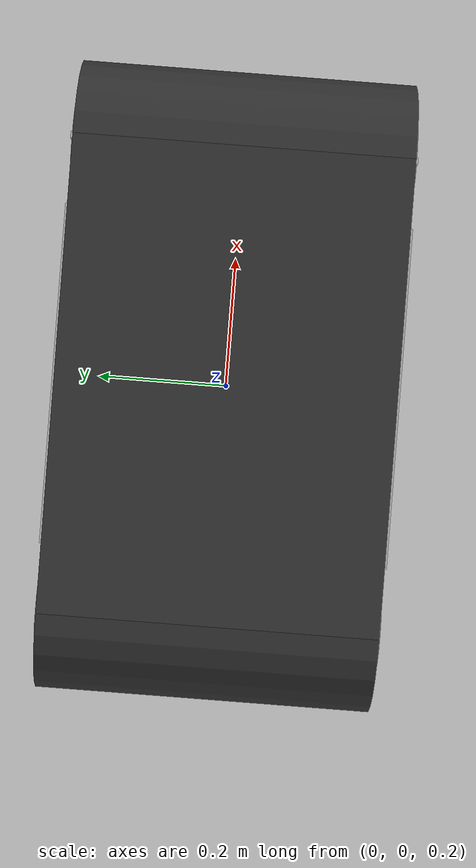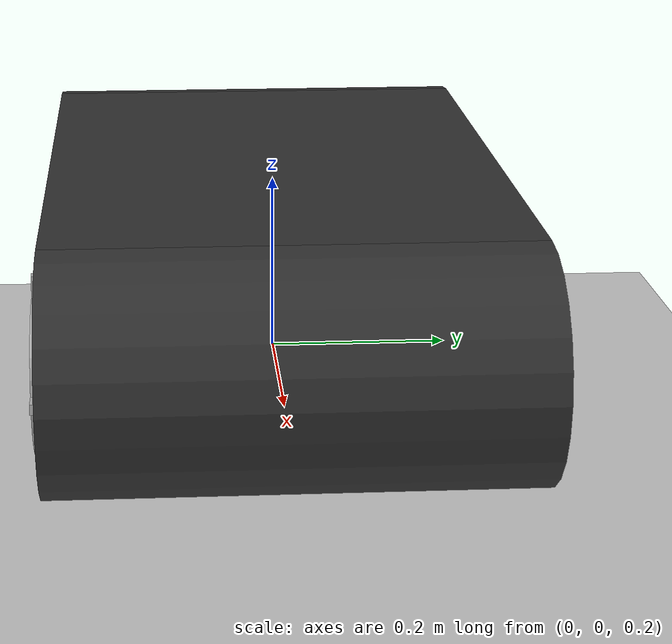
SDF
<?xml version="1.0" ?>
<sdf version="1.6">
    <world name="default">
        <include>
            <uri>model://ground_plane</uri>
        </include>

        <!-- Global light source -->
        <include>
            <uri>model://sun</uri>
        </include>

        <!-- Example track -->
        <include>
            <uri>model://example_track_simple</uri>
            <pose>0 0 0.3 0 0 0</pose>
        </include>

        <!-- Rigid anchor for the track -->

        <!-- camera angle -->
        <gui fullscreen='0'>
            <camera name='user_camera'>
                <pose>2.0 -1.5 1.0 0.0 0.3 2.45</pose>
                <view_controller>orbit</view_controller>
            </camera>
        </gui>
    </world>
</sdf>

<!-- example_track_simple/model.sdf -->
<sdf version='1.6'>
  <model name='example_track_simple'>
    <link name='body'>
      <pose frame=''>0 0 0 0 -0 0</pose>
      <inertial>
        <pose frame=''>-0.058333 0 0 0 -0 0</pose>
        <mass>1.2</mass>
        <inertia>
          <ixx>0.0296633</ixx>
          <ixy>0</ixy>
          <ixz>0</ixz>
          <iyy>0.0452233</iyy>
          <iyz>0</iyz>
          <izz>0.06758</izz>
        </inertia>
      </inertial>
      <collision name='body_collision'>
        <pose frame=''>0 0 0 0 -0 0</pose>
        <geometry>
          <box>
            <size>0.51 0.5 0.2</size>
          </box>
        </geometry>
      </collision>
      <collision name='body_fixed_joint_lump__idler_collision_1'>
        <pose frame=''>-0.35 0 0 1.5708 -0 0</pose>
        <geometry>
          <cylinder>
            <length>0.51</length>
            <radius>0.08</radius>
          </cylinder>
        </geometry>
      </collision>
      <visual name='body_visual'>
        <pose frame=''>0 0 0 0 -0 0</pose>
        <geometry>
          <box>
            <size>0.5 0.51 0.2</size>
          </box>
        </geometry>
      </visual>
      <visual name='body_fixed_joint_lump__idler_visual_1'>
        <pose frame=''>-0.35 0 0 1.5708 -0 0</pose>
        <geometry>
          <cylinder>
            <length>0.51</length>
            <radius>0.08</radius>
          </cylinder>
        </geometry>
      </visual>
    </link>
    <link name='sprocket'>
      <pose frame=''>0.35 0 0 0 -0 0</pose>
      <inertial>
        <pose frame=''>0 0 0 0 -0 0</pose>
        <mass>0.2</mass>
        <inertia>
          <ixx>0.004655</ixx>
          <ixy>0</ixy>
          <ixz>0</ixz>
          <iyy>0.00064</iyy>
          <iyz>0</iyz>
          <izz>0.004655</izz>
        </inertia>
      </inertial>
      <collision name='sprocket_collision'>
        <pose frame=''>0 0 0 1.5708 -0 0</pose>
        <geometry>
          <cylinder>
            <length>0.51</length>
            <radius>0.08</radius>
          </cylinder>
        </geometry>
      </collision>
      <visual name='sprocket_visual'>
        <pose frame=''>0 0 0 1.5708 -0 0</pose>
        <geometry>
          <cylinder>
            <length>0.51</length>
            <radius>0.08</radius>
          </cylinder>
        </geometry>
      </visual>
      <visual name='sprocket_visual_1'>
        <pose frame=''>0 0 0 0 -0 0</pose>
        <geometry>
          <box>
            <size>0.01 0.51 0.2</size>
          </box>
        </geometry>
      </visual>
      <visual name='sprocket_visual_2'>
        <pose frame=''>0 0 0 0 -0 0</pose>
        <geometry>
          <box>
            <size>0.2 0.51 0.01</size>
          </box>
        </geometry>
      </visual>
    </link>
    <joint name='sprocket_axle' type='revolute'>
      <child>sprocket</child>
      <parent>body</parent>
      <axis>
        <xyz>0 1 0</xyz>
        <limit>
          <lower>-1e+16</lower>
          <upper>1e+16</upper>
        </limit>
        <dynamics>
          <spring_reference>0</spring_reference>
          <spring_stiffness>0</spring_stiffness>
        </dynamics>
        <use_parent_model_frame>0</use_parent_model_frame>
      </axis>
    </joint>
    <link name='track_straight_segment_link0'>
      <pose frame=''>-0.35 0 0.125 0 -0 0</pose>
      <inertial>
        <pose frame=''>0.35 0 -0.0625 0 -0 0</pose>
        <mass>0.1</mass>
        <inertia>
          <ixx>0.00221354</ixx>
          <ixy>0</ixy>
          <ixz>0</ixz>
          <iyy>0.00421354</iyy>
          <iyz>0</iyz>
          <izz>0.00616667</izz>
        </inertia>
      </inertial>
      <collision name='collision'>
        <pose frame=''>0.35 0 -0.0625 0 -0 0</pose>
        <geometry>
          <box>
            <size>0.7 0.5 0.125</size>
          </box>
        </geometry>
        <surface>
          <friction>
            <ode>
              <mu>0.5</mu>
              <mu2>0.5</mu2>
            </ode>
          </friction>
          <contact>
            <ode>
              <min_depth>0.01</min_depth>
            </ode>
          </contact>
        </surface>
      </collision>
      <visual name='visual'>
        <pose frame=''>0.35 0 -0.0625 0 -0 0</pose>
        <geometry>
          <box>
            <size>0.7 0.5 0.125</size>
          </box>
        </geometry>
        <material>
          <ambient>0.1 0.3 0.1 1</ambient>
          <diffuse>0.2 0.2 0.2 1</diffuse>
          <specular>0 0 0 1</specular>
          <emissive>0 0 0 1</emissive>
        </material>
      </visual>
    </link>
    <link name='track_straight_segment_link1'>
      <pose frame=''>0.35 0 -0.125 3.14159 -0 3.14159</pose>
      <inertial>
        <pose frame=''>0.35 0 -0.0625 0 -0 0</pose>
        <mass>0.1</mass>
        <inertia>
          <ixx>0.00221354</ixx>
          <ixy>0</ixy>
          <ixz>0</ixz>
          <iyy>0.00421354</iyy>
          <iyz>0</iyz>
          <izz>0.00616667</izz>
        </inertia>
      </inertial>
      <collision name='collision'>
        <pose frame=''>0.35 0 -0.0625 0 -0 0</pose>
        <geometry>
          <box>
            <size>0.7 0.5 0.125</size>
          </box>
        </geometry>
        <surface>
          <friction>
            <ode>
              <mu>0.5</mu>
              <mu2>0.5</mu2>
            </ode>
          </friction>
          <contact>
            <ode>
              <min_depth>0.01</min_depth>
            </ode>
          </contact>
        </surface>
      </collision>
      <visual name='visual'>
        <pose frame=''>0.35 0 -0.0625 0 -0 0</pose>
        <geometry>
          <box>
            <size>0.7 0.5 0.125</size>
          </box>
        </geometry>
        <material>
          <ambient>0.1 0.3 0.1 1</ambient>
          <diffuse>0.2 0.2 0.2 1</diffuse>
          <specular>0 0 0 1</specular>
          <emissive>0 0 0 1</emissive>
        </material>
      </visual>
    </link>
    <joint name='track_straight_segment_joint0' type='prismatic'>
      <child>track_straight_segment_link0</child>
      <parent>body</parent>
      <axis>
        <xyz>1 0 0</xyz>
        <use_parent_model_frame>0</use_parent_model_frame>
        <limit>
          <lower>-1e+16</lower>
          <upper>1e+16</upper>
        </limit>
      </axis>
      <physics>
        <ode>
          <implicit_spring_damper>1</implicit_spring_damper>
        </ode>
      </physics>
    </joint>
    <joint name='track_straight_segment_joint1' type='prismatic'>
      <child>track_straight_segment_link1</child>
      <parent>body</parent>
      <axis>
        <xyz>1 0 0</xyz>
        <use_parent_model_frame>0</use_parent_model_frame>
        <limit>
          <lower>-1e+16</lower>
          <upper>1e+16</upper>
        </limit>
      </axis>
      <physics>
        <ode>
          <implicit_spring_damper>1</implicit_spring_damper>
        </ode>
      </physics>
    </joint>
    <link name='track_arc_segment_link0'>
      <pose frame=''>0.35 0 0.125 0 -0 0</pose>
      <inertial>
        <pose frame=''>0 0 -0.125 1.5708 -0 0</pose>
        <mass>0.1</mass>
        <inertia>
          <ixx>0.00247396</ixx>
          <ixy>0</ixy>
          <ixz>0</ixz>
          <iyy>0.00247396</iyy>
          <iyz>0</iyz>
          <izz>0.00078125</izz>
        </inertia>
      </inertial>
      <collision name='collision'>
        <pose frame=''>0 0 -0.125 1.5708 -0 0</pose>
        <geometry>
          <cylinder>
            <length>0.5</length>
            <radius>0.125</radius>
          </cylinder>
        </geometry>
        <surface>
          <friction>
            <ode>
              <mu>0.5</mu>
              <mu2>0.5</mu2>
            </ode>
          </friction>
          <contact>
            <ode>
              <min_depth>0.01</min_depth>
            </ode>
          </contact>
        </surface>
      </collision>
      <visual name='visual'>
        <pose frame=''>0 0 -0.125 1.5708 -0 0</pose>
        <geometry>
          <cylinder>
            <length>0.5</length>
            <radius>0.125</radius>
          </cylinder>
        </geometry>
        <material>
          <ambient>0.1 0.3 0.1 1</ambient>
          <diffuse>0.2 0.2 0.2 1</diffuse>
          <specular>0 0 0 1</specular>
          <emissive>0 0 0 1</emissive>
        </material>
      </visual>
    </link>
    <link name='track_arc_segment_link1'>
      <pose frame=''>-0.35 0 -0.125 3.14159 -0 3.14159</pose>
      <inertial>
        <pose frame=''>0 0 -0.125 1.5708 -0 0</pose>
        <mass>0.1</mass>
        <inertia>
          <ixx>0.00247396</ixx>
          <ixy>0</ixy>
          <ixz>0</ixz>
          <iyy>0.00247396</iyy>
          <iyz>0</iyz>
          <izz>0.00078125</izz>
        </inertia>
      </inertial>
      <collision name='collision'>
        <pose frame=''>0 0 -0.125 1.5708 -0 0</pose>
        <geometry>
          <cylinder>
            <length>0.5</length>
            <radius>0.125</radius>
          </cylinder>
        </geometry>
        <surface>
          <friction>
            <ode>
              <mu>0.5</mu>
              <mu2>0.5</mu2>
            </ode>
          </friction>
          <contact>
            <ode>
              <min_depth>0.01</min_depth>
            </ode>
          </contact>
        </surface>
      </collision>
      <visual name='visual'>
        <pose frame=''>0 0 -0.125 1.5708 -0 0</pose>
        <geometry>
          <cylinder>
            <length>0.5</length>
            <radius>0.125</radius>
          </cylinder>
        </geometry>
        <material>
          <ambient>0.1 0.3 0.1 1</ambient>
          <diffuse>0.2 0.2 0.2 1</diffuse>
          <specular>0 0 0 1</specular>
          <emissive>0 0 0 1</emissive>
        </material>
      </visual>
    </link>
    <joint name='track_arc_segment_joint0' type='revolute'>
      <child>track_arc_segment_link0</child>
      <parent>body</parent>
      <pose frame=''>0 0 -0.125 0 -0 0</pose>
      <axis>
        <xyz>0 1 0</xyz>
        <use_parent_model_frame>0</use_parent_model_frame>
        <limit>
          <lower>-1e+16</lower>
          <upper>1e+16</upper>
        </limit>
      </axis>
      <physics>
        <ode>
          <implicit_spring_damper>1</implicit_spring_damper>
        </ode>
      </physics>
    </joint>
    <joint name='track_arc_segment_joint1' type='revolute'>
      <child>track_arc_segment_link1</child>
      <parent>body</parent>
      <pose frame=''>0 0 -0.125 0 -0 0</pose>
      <axis>
        <xyz>0 1 0</xyz>
        <use_parent_model_frame>0</use_parent_model_frame>
        <limit>
          <lower>-1e+16</lower>
          <upper>1e+16</upper>
        </limit>
      </axis>
      <physics>
        <ode>
          <implicit_spring_damper>1</implicit_spring_damper>
        </ode>
      </physics>
    </joint>
    <plugin name='track' filename='libContinuousTrackSimple.so'>
      <sprocket>
        <joint>sprocket_axle</joint>
        <pitch_diameter>0.24</pitch_diameter>
      </sprocket>
      <track>
        <segment>
          <joint>track_straight_segment_joint0</joint>
        </segment>
        <segment>
          <joint>track_arc_segment_joint0</joint>
          <pitch_diameter>0.24</pitch_diameter>
        </segment>
        <segment>
          <joint>track_straight_segment_joint1</joint>
        </segment>
        <segment>
          <joint>track_arc_segment_joint1</joint>
          <pitch_diameter>0.24</pitch_diameter>
        </segment>
      </track>
    </plugin>
    <static>0</static>
    <plugin name='gazebo_ros_control' filename='libgazebo_ros_control.so'>
      <robotSimType>gazebo_ros_control/DefaultRobotHWSim</robotSimType>
      <legacyModeNS>0</legacyModeNS>
    </plugin>
  </model>
</sdf>
